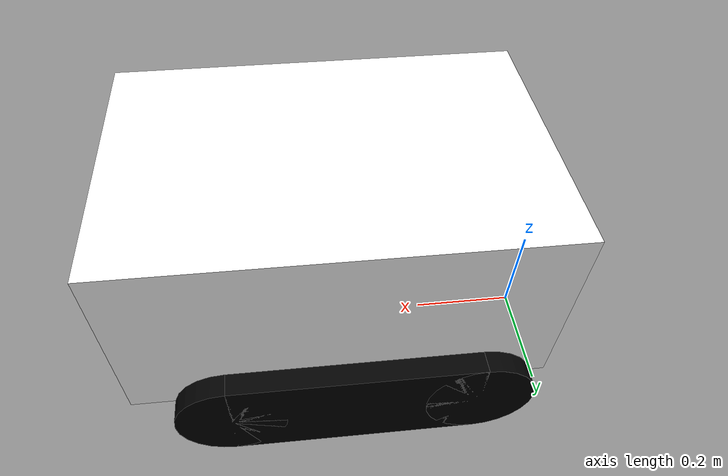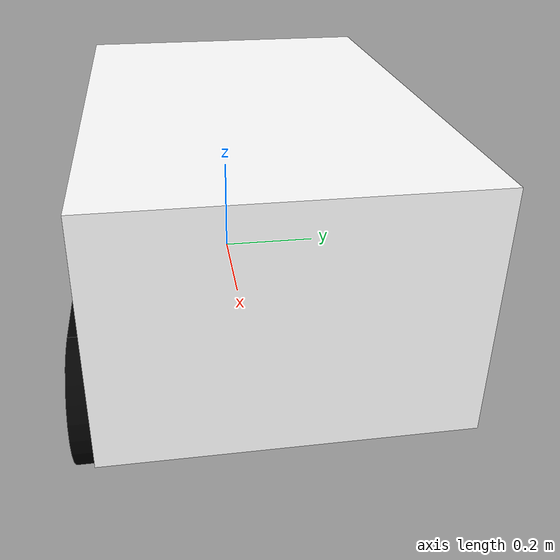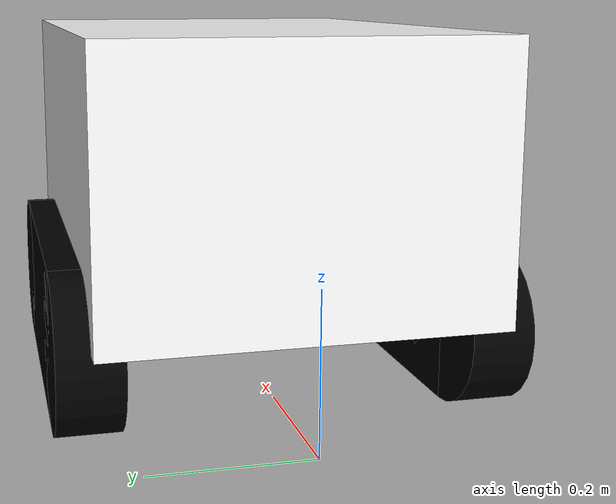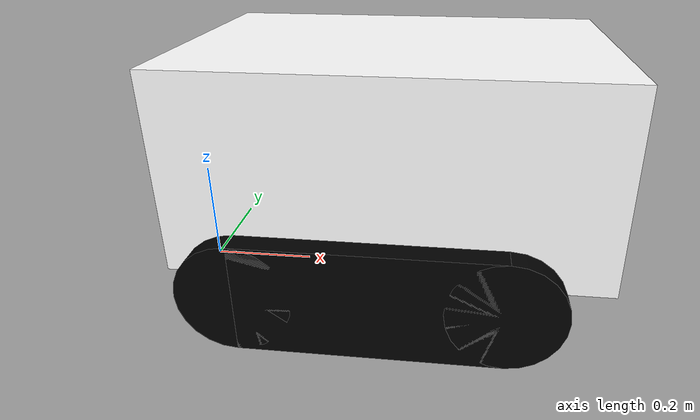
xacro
<?xml version="1.0"?>
<robot xmlns:xacro="http://www.ros.org/wiki/xacro">

<xacro:include filename="inertial_macros.xacro"/>

    <material name = "white">
        <color rgba= "1 1 1 1" />
    </material>

    <material name = "black">
        <color rgba= "0 0 0 1" />
    </material>

    <material name = "blue">
        <color rgba= ".2 .2 1 1" />
    </material>

    <link name="base_link"></link>

    <!-- BASE_FOOTPRINT LINK -->

    <!-- Assuming zed movement is negligable -->

    <joint name="base_footprint_joint" type="fixed">
        <parent link="base_link"/>
        <child link="base_footprint"/>
        <origin xyz="0 0 0" rpy="0 0 0"/>
    </joint>

    <link name="base_footprint">
    </link>

    <!-- CHASSIS LINK -->

    <joint name="chassis_joint" type="fixed">
        <parent link="base_link"/>
        <child link="chassis"/>
        <origin xyz="-0.1 0 0.1"/>
    </joint>

    <link name="chassis">
        <visual>
            <origin xyz=".5 0 .2"/>
            <geometry>
                <box size=".75 .5 0.35"/>
            </geometry>
            <material name="white"/>
        </visual>
        <collision>
            <origin xyz=".5 0 .25"/>
            <geometry>
                <box size=".75 .5 0.35"/>
            </geometry>
        </collision>
        <xacro:inertial_box mass="42" x="1" y="1" z=".4">
            <origin xyz=".5 0 .2" rpy="0 0 0"/>
        </xacro:inertial_box>
    </link>

    <gazebo reference="chassis">
        <material>Gazebo/White</material>
    </gazebo>

 <!-- LEFT DRIVE WHEEL 1 LINK -->

    <joint name="left_drive_wheel_1_joint" type="fixed">
        <parent link="base_link"/>
        <child link="left_drive_wheel_1_train"/>
        <origin xyz=".15 -.25 .1" rpy="${pi/2} 0 0"/>
        <axis xyz="0 0 1"/>
    </joint>

    <link name="left_drive_wheel_1_train">
        <visual>
            <geometry>
                <cylinder radius=".1" length=".08"/>
            </geometry>
            <material name="black"/>
        </visual>
        <collision>
            <geometry>
                <cylinder radius=".1" length=".08"/>
            </geometry>
        </collision>
        <xacro:inertial_cylinder mass="3" length=".08" radius=".1">
            <origin xyz="0 0 0" rpy="0 0 0"/>
        </xacro:inertial_cylinder>
    </link>

 <!-- LEFT DRIVE WHEEL 3 LINK -->

    <gazebo reference="left_drive_wheel_1_train">
        <material>Gazebo/Black</material>
    </gazebo>

    <joint name="left_drive_wheel_3_joint" type="fixed">
        <parent link="base_link"/>
        <child link="left_drive_wheel_3_train"/>
        <origin xyz=".6 -.25 .1" rpy="${pi/2} 0 0"/>
        <axis xyz="0 0 1"/>
    </joint>

    <link name="left_drive_wheel_3_train">
        <visual>
            <geometry>
                <cylinder radius=".1" length=".08"/>
            </geometry>
            <material name="black"/>
        </visual>
        <collision>
            <geometry>
                <cylinder radius=".1" length=".08"/>
            </geometry>
        </collision>
        <xacro:inertial_cylinder mass="3" length=".08" radius=".1">
            <origin xyz="0 0 0" rpy="0 0 0"/>
        </xacro:inertial_cylinder>
    </link>

    <gazebo reference="left_drive_wheel_3_train">
        <material>Gazebo/Black</material>
    </gazebo>

<!-- RIGHT DRIVE WHEEL 1 LINK -->

    <joint name="right_drive_wheel_1_joint" type="fixed">
        <parent link="base_link"/>
        <child link="right_drive_wheel_1_train"/>
        <origin xyz=".15 .25 .1" rpy="-${pi/2} 0 0"/>
        <axis xyz="0 0 -1"/>
    </joint>

    <link name="right_drive_wheel_1_train">
        <visual>
            <geometry>
                <cylinder radius=".1" length=".08"/>
            </geometry>
            <material name="black"/>
        </visual>
        <collision>
            <geometry>
                <cylinder radius=".1" length=".08"/>
            </geometry>
        </collision>
        <xacro:inertial_cylinder mass="3" length=".08" radius=".1">
            <origin xyz="0 0 0" rpy="0 0 0"/>
        </xacro:inertial_cylinder>
    </link>

    <gazebo reference="right_drive_wheel_1_train">
        <material>Gazebo/Black</material>
    </gazebo>

<!-- RIGHT DRIVE WHEEL 3 LINK -->

    <joint name="right_drive_wheel_3_joint" type="fixed">
        <parent link="base_link"/>
        <child link="right_drive_wheel_3_train"/>
        <origin xyz=".6 .25 .1" rpy="-${pi/2} 0 0"/>
        <axis xyz="0 0 -1"/>
    </joint>

    <link name="right_drive_wheel_3_train">
        <visual>
            <geometry>
                <cylinder radius=".1" length=".08"/>
            </geometry>
            <material name="black"/>
        </visual>
        <collision>
            <geometry>
                <cylinder radius=".1" length=".08"/>
            </geometry>
        </collision>
        <xacro:inertial_cylinder mass="3" length=".08" radius=".1">
            <origin xyz="0 0 0" rpy="0 0 0"/>
        </xacro:inertial_cylinder>
    </link>

    <gazebo reference="right_drive_wheel_3_train">
        <material>Gazebo/Black</material>
    </gazebo>

<!-- RIGHT TREDS -->
    <joint name="right_tread_joint" type="fixed">
        <parent link="base_link"/>
        <child link="right_tred"/>
        <origin xyz=".375 .25 .1"/>
    </joint>

    <link name="right_tred">
        <visual>
            <geometry>
                <box size=".45 .08 0.2"/>
            </geometry>
            <material name="black"/>
        </visual>
        <collision>
            <geometry>
                <box size=".45 .08 0.2"/>
            </geometry>
        </collision>
        <xacro:inertial_box mass="2" x=".45" y=".08" z=".3">
            <origin xyz=".5 0 .25" rpy="0 0 0"/>
        </xacro:inertial_box>
    </link>

    <gazebo reference="right_tred">
        <material>Gazebo/Black</material>
    </gazebo>

<!-- LEFT TREDS -->
    <joint name="left_tread_joint" type="fixed">
        <parent link="base_link"/>
        <child link="left_tred"/>
        <origin xyz=".375 -.25 .1"/>
    </joint>

    <link name="left_tred">
        <visual>
            <geometry>
                <box size=".45 .08 0.2"/>
            </geometry>
            <material name="black"/>
        </visual>
        <collision>
            <geometry>
                <box size=".45 .08 0.2"/>
            </geometry>
        </collision>
        <xacro:inertial_box mass="42" x=".45" y=".2" z=".3">
            <origin xyz=".5 0 .25" rpy="0 0 0"/>
        </xacro:inertial_box>
    </link>
</robot>
